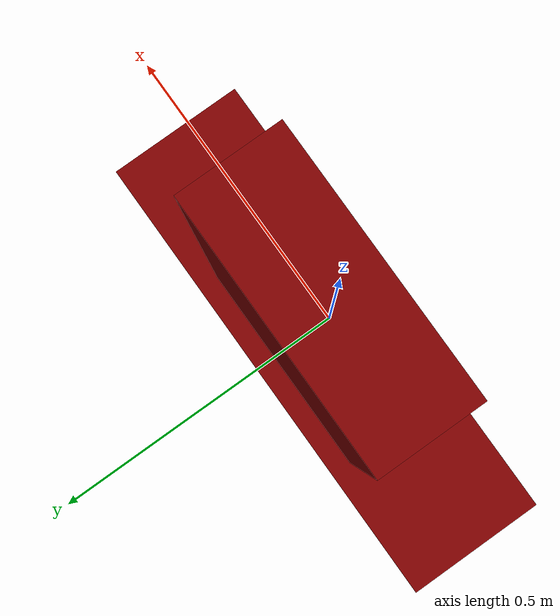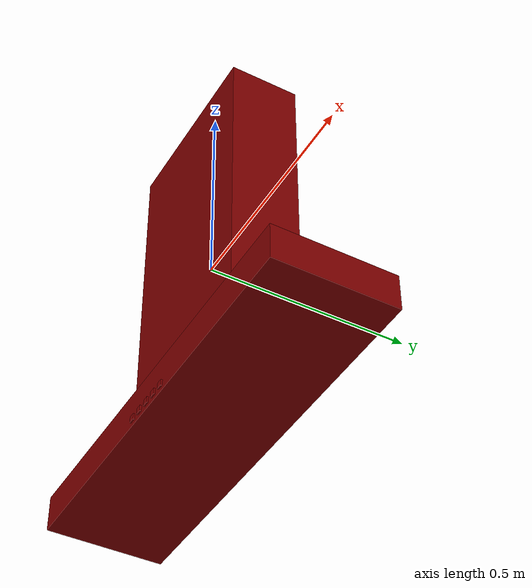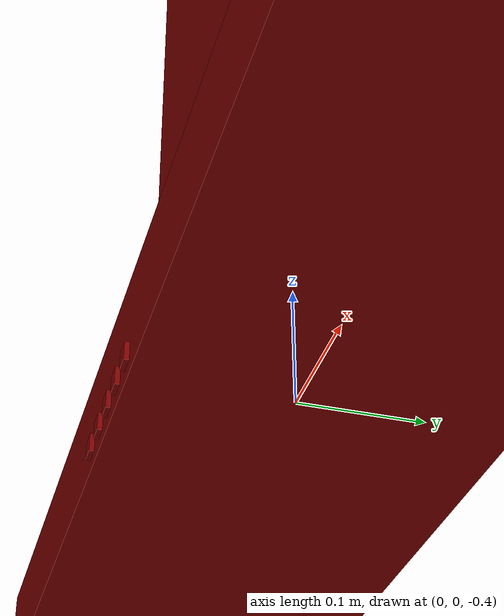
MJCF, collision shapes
<?xml version='1.0' encoding='UTF-8'?>
<mujoco model="model">
  <compiler angle="radian"/>
  <asset>
    <mesh file="visuals/Body001.obj" name="Body001_vis"/>
    <mesh file="visuals/Button001.obj" name="Button001_vis"/>
    <mesh file="visuals/Button002.obj" name="Button002_vis"/>
    <mesh file="visuals/Button003.obj" name="Button003_vis"/>
    <mesh file="visuals/Button004.obj" name="Button004_vis"/>
    <mesh file="visuals/Button005.obj" name="Button005_vis"/>
    <texture file="visuals/T_BC001.png" name="Body001_material" type="2d"/>
    <material name="Body001_material" rgba="1 1 1 1.0" texture="Body001_material" shininess="0.6021478176116943" specular="0.3103448502657381"/>
    <texture file="visuals/T_BC001.png" name="Button001_material" type="2d"/>
    <material name="Button001_material" rgba="1 1 1 1.0" texture="Button001_material" shininess="0.6021478176116943" specular="0.3103448502657381"/>
    <texture file="visuals/T_BC001.png" name="Button002_material" type="2d"/>
    <material name="Button002_material" rgba="1 1 1 1.0" texture="Button002_material" shininess="0.6021478176116943" specular="0.3103448502657381"/>
    <texture file="visuals/T_BC001.png" name="Button003_material" type="2d"/>
    <material name="Button003_material" rgba="1 1 1 1.0" texture="Button003_material" shininess="0.6021478176116943" specular="0.3103448502657381"/>
    <texture file="visuals/T_BC001.png" name="Button004_material" type="2d"/>
    <material name="Button004_material" rgba="1 1 1 1.0" texture="Button004_material" shininess="0.6021478176116943" specular="0.3103448502657381"/>
    <texture file="visuals/T_BC001.png" name="Button005_material" type="2d"/>
    <material name="Button005_material" rgba="1 1 1 1.0" texture="Button005_material" shininess="0.6021478176116943" specular="0.3103448502657381"/>
  </asset>
  <default>
    <default class="visual">
      <geom conaffinity="0" contype="0" group="1" type="mesh"/>
    </default>
    <default class="collision">
      <geom group="0" rgba="0.5 0 0 0.5"/>
    </default>
    <default class="spawn">
      <geom group="0" rgba="1 1 1 0.5" contype="0" conaffinity="0"/>
      <site group="0" rgba="1 1 1 0.5"/>
    </default>
    <default class="region">
      <geom group="1" conaffinity="0" contype="0" rgba="0 1 0 0"/>
    </default>
  </default>
  <worldbody>
    <body>
      <body name="object">
        <geom mesh="Body001_vis" type="mesh" solimp="0.998 0.998 0.001" solref="0.001 1" density="100" friction="0.95 0.3 0.1" class="visual" material="Body001_material"/>
        <geom class="collision" type="box" pos="-0.006053 0.018385 0.041946" size="0.21228091418743134 0.08162669092416763 0.39915990829467773" quat="1.0 0.0 0.0 0.0"/>
        <geom class="collision" type="box" pos="0.000000 0.002028 -0.398821" size="0.4821198880672455 0.13750651478767395 0.04228421300649643" quat="1.0 0.0 0.0 0.0"/>
        <body name="Button001">
          <joint axis="0.0 1.0 0.0" pos="-0.060494 -0.137413 -0.424475" limited="true" name="Button001_joint" range="0.0 0.002" type="slide" damping="1" frictionloss="1" armature=".01" stiffness="0.05"/>
          <geom mesh="Button001_vis" type="mesh" solimp="0.998 0.998 0.001" solref="0.001 1" density="100" friction="0.95 0.3 0.1" class="visual" material="Button001_material"/>
          <geom class="collision" type="box" pos="-0.060470 -0.137695 -0.424438" size="0.007179344072937965 0.0018396058585494757 0.007121779024600983" quat="1.0 0.0 0.0 0.0"/>
        </body>
        <body name="Button002">
          <joint axis="0.0 1.0 0.0" pos="-0.030265 -0.137413 -0.424475" limited="true" name="Button002_joint" range="0.0 0.002" type="slide" damping="1" frictionloss="1" armature=".01" stiffness="0.05"/>
          <geom mesh="Button002_vis" type="mesh" solimp="0.998 0.998 0.001" solref="0.001 1" density="100" friction="0.95 0.3 0.1" class="visual" material="Button002_material"/>
          <geom class="collision" type="box" pos="-0.030237 -0.137695 -0.424438" size="0.007179344072937965 0.0018396058585494757 0.007121779024600983" quat="1.0 0.0 0.0 0.0"/>
        </body>
        <body name="Button003">
          <joint axis="0.0 1.0 0.0" pos="-0.000036 -0.137413 -0.424475" limited="true" name="Button003_joint" range="0.0 0.002" type="slide" damping="1" frictionloss="1" armature=".01" stiffness="0.05"/>
          <geom mesh="Button003_vis" type="mesh" solimp="0.998 0.998 0.001" solref="0.001 1" density="100" friction="0.95 0.3 0.1" class="visual" material="Button003_material"/>
          <geom class="collision" type="box" pos="-0.000014 -0.137695 -0.424438" size="0.007179344072937965 0.0018396058585494757 0.007121779024600983" quat="1.0 0.0 0.0 0.0"/>
        </body>
        <body name="Button004">
          <joint axis="0.0 1.0 0.0" pos="0.030193 -0.137413 -0.424475" limited="true" name="Button004_joint" range="0.0 0.002" type="slide" damping="1" frictionloss="1" armature=".01" stiffness="0.05"/>
          <geom mesh="Button004_vis" type="mesh" solimp="0.998 0.998 0.001" solref="0.001 1" density="100" friction="0.95 0.3 0.1" class="visual" material="Button004_material"/>
          <geom class="collision" type="box" pos="0.030210 -0.137695 -0.424438" size="0.007179344072937965 0.0018396058585494757 0.007121779024600983" quat="1.0 0.0 0.0 0.0"/>
        </body>
        <body name="Button005">
          <joint axis="0.0 1.0 0.0" pos="0.060422 -0.137413 -0.424475" limited="true" name="Button005_joint" range="0.0 0.002" type="slide" damping="1" frictionloss="1" armature=".01" stiffness="0.05"/>
          <geom mesh="Button005_vis" type="mesh" solimp="0.998 0.998 0.001" solref="0.001 1" density="100" friction="0.95 0.3 0.1" class="visual" material="Button005_material"/>
          <geom class="collision" type="box" pos="0.060425 -0.137695 -0.424438" size="0.007179344072937965 0.0018396058585494757 0.007121779024600983" quat="1.0 0.0 0.0 0.0"/>
        </body>
        <geom class="region" name="reg_main" type="box" pos="-3.649999999999487e-05 -0.00037049999999999583 0.00019700000000000273" size="0.4819825 0.1390345 0.440321"/>
      </body>
    </body>
  </worldbody>
  <actuator>
    <motor name="Button001_joint_actuator" joint="Button001_joint" gear="0.5"/>
    <motor name="Button002_joint_actuator" joint="Button002_joint" gear="0.5"/>
    <motor name="Button003_joint_actuator" joint="Button003_joint" gear="0.5"/>
    <motor name="Button004_joint_actuator" joint="Button004_joint" gear="0.5"/>
    <motor name="Button005_joint_actuator" joint="Button005_joint" gear="0.5"/>
  </actuator>
</mujoco>
